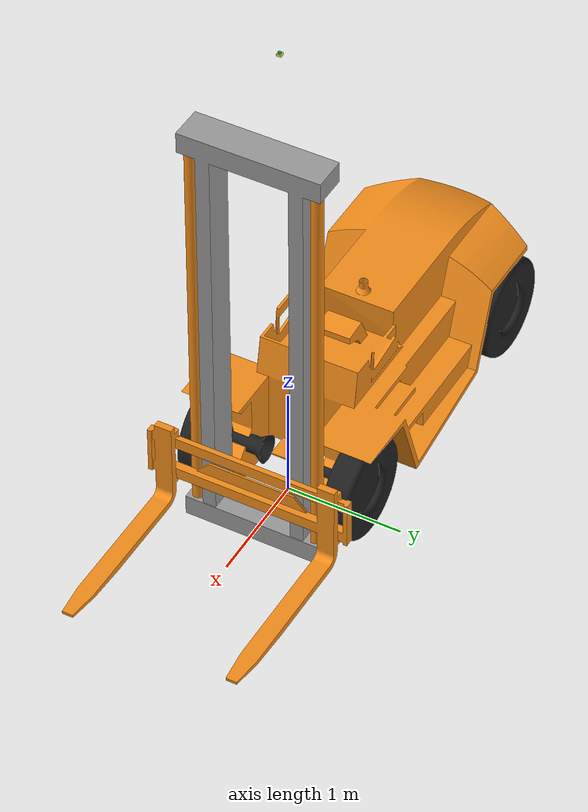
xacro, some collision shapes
<?xml version="1.0"?>

<robot name="forktruck"
       xmlns:sensor="http://playerstage.sourceforge.net/gazebo/xmlschema/#sensor"
       xmlns:controller="http://playerstage.sourceforge.net/gazebo/xmlschema/#controller"
       xmlns:interface="http://playerstage.sourceforge.net/gazebo/xmlschema/#interface"
       xmlns:xacro="http://ros.org/wiki/xacro">
  <include filename="$(find tutorial_gazebo)/urdf/forktruck_body.urdf.xacro" />
  <include filename="$(find tutorial_gazebo)/urdf/forktruck_plugin.xacro" />

  <property name="M_PI" value="3.14159"/>
  <property name="SCALE" value="0.0254"/>

  <!-- Body of qiubot -->
  <forktruck_body/>

</robot>

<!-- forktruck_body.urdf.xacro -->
<robot name="forktruck_model" xmlns:xacro="http://ros.org/wiki/xacro">
  <property name="M_PI" value="3.14159"/>
  <property name="R_wheel" value="0.3"/>
  <property name="W_wheel" value="0.08"/>
  <property name="ratio" value="0.006"/>
  <!-- Macro for forktruck body. -->
  <!-- Import Rviz colors -->
  <xacro:include filename="$(find tutorial_gazebo)/urdf/materials.xacro" />
  <property name="base_z" value="0.08" />

  <xacro:macro name="forktruck_body">

  <link name="base_footprint">
    <visual>
      <origin xyz="0 0 0" rpy="0 0 0" />
      <geometry>
        <box size="0.001 0.001 0.001" />
      </geometry>
    </visual>
    <collision>
      <origin xyz="0 0 0.1" rpy="0 0 0" />
      <geometry>
       <box size="0.001 0.001 0.001" />
      </geometry>
    </collision>
  </link>

  <link name="base_link">
    <inertial>
      <mass value="80" />
      <origin xyz="0 0 0" />
      <inertia ixx="0.01" ixy="0.0" ixz="0.0"
        iyy="0.01" iyz="0.0" izz="0.5" />
    </inertial>
    <visual>
      <origin xyz="0 0 0" rpy="${0.5*M_PI} ${0.0*M_PI} ${0.5*M_PI}" />
      <geometry>
	        <mesh filename="package://tutorial_gazebo/meshes/folktruck_base.stl" scale="${ratio} ${ratio} ${ratio}"/>
      </geometry>
    </visual>
    <collision>
      <origin xyz="0 0 0" rpy="0 0 0" />
      <geometry>
	        <box size="0.0004 0.004 0.0004" />
      </geometry>
    </collision>
  </link>

  <joint name="base_footprint_joint" type="fixed">
    <origin xyz="0 0 ${R_wheel}" rpy="0 0 0" />
    <parent link="base_footprint"/>
    <child link="base_link" />
  </joint>

 <link name="f_wheel_link">
    <inertial>
      <origin xyz="0 0 0"/>
      <mass value="10.01" />
      <inertia ixx="0.001" ixy="0.0" ixz="0.0"
        iyy="0.001" iyz="0.0" izz="0.001" />
    </inertial>
    <visual>
      <origin xyz="0 0 0" rpy="${0.5*M_PI} ${0.0*M_PI} ${0.5*M_PI}" />
      <geometry>
        <mesh filename="package://tutorial_gazebo/meshes/folktruck_wheel.stl" scale="${1.0*ratio} ${ratio} ${ratio}"/>
      </geometry>
         <material name="black" />
    </visual>
    <collision>
      <origin xyz="0 0 0" rpy="${0.5*M_PI} ${0.0*M_PI} ${0.5*M_PI}" />
      <geometry>
        <mesh filename="package://tutorial_gazebo/meshes/folktruck_wheel.stl" scale="${1.0*ratio} ${ratio} ${ratio}"/>
      </geometry>
    </collision>
  </link>

  <joint name="f_wheel_joint" type="fixed">
    <origin xyz="0.0 0.0 -0.040" rpy="0 0 0"/>
    <parent link="base_link"/>
    <child link="f_wheel_link"/>
    <axis xyz="0 1 0"/>
  </joint>

<link name="r_wheel_link">
    <inertial>
      <origin xyz="0 0 0"/>
      <mass value="20" />
      <inertia ixx="0.001" ixy="0.0" ixz="0.0"
        iyy="0.001" iyz="0.0" izz="0.001" />
    </inertial>
    <visual>
      <origin xyz="0 0 0" rpy="${0.5*M_PI} ${0.0*M_PI} ${0.5*M_PI}" />
      <geometry>
        <mesh filename="package://tutorial_gazebo/meshes/folktruck_wheel.stl" scale="${ratio} ${ratio} ${ratio}"/>
      </geometry>
         <material name="black" />
    </visual>

    <collision>
      <origin xyz="0 0 0" rpy="${0.5*M_PI} ${0.0*M_PI} ${0.5*M_PI}" />
      <geometry>
        <mesh filename="package://tutorial_gazebo/meshes/folktruck_wheel.stl" scale="${ratio} ${ratio} ${ratio}"/>
      </geometry>
    </collision>
  </link>

  <joint name="r_wheel_joint" type="fixed">
    <origin xyz="-2.4 0.0 -0.04" rpy="0 0 0"/>
    <parent link="base_link"/>
    <child link="r_wheel_link"/>
    <axis xyz="0 1 0"/>
  </joint>

<link name="vplate">
    <inertial>
      <origin xyz="0 0 0"/>
      <mass value="10" />
      <inertia ixx="0.001" ixy="0.0" ixz="0.0"
        iyy="0.001" iyz="0.0" izz="0.001" />
    </inertial>
    <visual>
      <origin xyz="0 0 0" rpy="${0.5*M_PI} ${0.0*M_PI} ${0.5*M_PI}" />
      <geometry>
        <mesh filename="package://tutorial_gazebo/meshes/folktruck_front.stl" scale="${ratio} ${1.5*ratio} ${ratio}"/>
      </geometry>
      <material name="grey" />
    </visual>

    <collision>
      <origin xyz="0 0 0.5" rpy="0 0 0" />
      <geometry>
        <sphere radius="0.035" />
      </geometry>
    </collision>
  </link>

  <joint name="vplate_joint" type="fixed">
    <origin xyz=".10 -0.0 0.04" rpy="0 0 0"/>
    <parent link="base_link"/>
    <child link="vplate"/>
  </joint>

<link name="lcynldr">
    <inertial>
      <origin xyz="0 0 0"/>
      <mass value="0.1" />
      <inertia ixx="0.001" ixy="0.0" ixz="0.0"
        iyy="0.001" iyz="0.0" izz="0.001" />
    </inertial>
    <visual>
      <origin xyz="0 0 0.0" rpy="0 0 0"/>
      <geometry>
        <cylinder  radius="0.05" length = "3.75"/>
      </geometry>
      <material name="orange" />
    </visual>

    <collision>
      <origin xyz="0 0 0.5" rpy="0 0 0" />
      <geometry>
        <cylinder  radius="0.0035" length = "0.2"/>
      </geometry>
    </collision>
  </link>

  <joint name="lcynldr_joint" type="fixed">
    <origin xyz="0.4 0.53 1.55" rpy="0 0 0"/>
    <parent link="vplate"/>
    <child link="lcynldr"/>
  </joint>

<link name="rcynldr">
    <inertial>
      <origin xyz="0 0 0"/>
      <mass value="0.1" />
      <inertia ixx="0.001" ixy="0.0" ixz="0.0"
        iyy="0.001" iyz="0.0" izz="0.001" />
    </inertial>
    <visual>
      <origin xyz="0 0 0.0" rpy="0 0 0"/>
      <geometry>
        <cylinder  radius="0.05" length = "3.75"/>
      </geometry>
      <material name="orange" />
    </visual>

    <collision>
      <origin xyz="0 0 0.5" rpy="0 0 0" />
      <geometry>
        <cylinder  radius="0.0035" length = "0.2"/>
      </geometry>
    </collision>
  </link>

  <joint name="rcynldr_joint" type="fixed">
        <origin xyz="0.4 -0.53 1.55" rpy="0 0 0"/>
    <parent link="vplate"/>
    <child link="rcynldr"/>
  </joint>

<link name="fork">
    <inertial>
      <origin xyz="0 0 0"/>
      <mass value="18" />
      <inertia ixx="0.021" ixy="0.0" ixz="0.0"
        iyy="0.021" iyz="0.0" izz="0.021" />
    </inertial>
    <visual>
      <origin xyz="0 0 0.0"  rpy="${0.5*M_PI} ${0.0*M_PI} ${0.5*M_PI}" />
      <geometry>
        <mesh filename="package://tutorial_gazebo/meshes/folktruck_fork.stl" scale="${ratio} ${ratio} ${ratio}"/>
      </geometry>
      <material name="orange" />
    </visual>

    <collision>
      <origin xyz="0 0 0.0"  rpy="${0.5*M_PI} ${0.0*M_PI} ${0.5*M_PI}" />
      <geometry>
        <mesh filename="package://tutorial_gazebo/meshes/folktruck_fork.stl" scale="${ratio} ${ratio} ${ratio}"/>
      </geometry>
    </collision>
  </link>

  <joint name="fork_joint" type="fixed">
    <origin xyz="0.0 0.0 -0.35" rpy="0 0 0"/>
    <axis xyz="0 0 1" />
    <limit effort="10.0" lower="-0.35" upper="3.5" velocity="0.2"/>
    <dynamics damping="1000.0"/>
    <parent link="vplate"/>
    <child link="fork"/>
  </joint>

<link name="plate">
    <inertial>
      <origin xyz="0 0 0"/>
      <mass value="0.1" />
      <inertia ixx="0.001" ixy="0.0" ixz="0.0"
        iyy="0.001" iyz="0.0" izz="0.001" />
    </inertial>
    <visual>
      <origin xyz="0 0 0.0" rpy="0 0 0"/>
      <geometry>
        <box size="0.2 0.2 0.012" />
      </geometry>
      <material name="orange" />
    </visual>

    <collision>
      <origin xyz="0 0 0.5" rpy="0 0 0" />
      <geometry>
        <sphere radius="0.035" />
      </geometry>
    </collision>
  </link>

  <joint name="plate_joint" type="fixed">
    <origin xyz="0.0 0 0.12" rpy="0 0 0"/>
    <parent link="base_link"/>
    <child link="plate"/>
  </joint>

  <link name="camera_pod_link">
    <inertial>
      <origin xyz="0 0 0"/>
      <mass value="0.1" />
      <inertia ixx="0.001" ixy="0.0" ixz="0.0"
        iyy="0.001" iyz="0.0" izz="0.001" />
    </inertial>
     <visual>
      <origin xyz="0 0 0.0" rpy="0 0 0"/>
      <geometry>
        <sphere radius="0.00028" />
      </geometry>
    </visual>

    <collision>
      <origin xyz="0 0 0.5" rpy="0 0 0" />
      <geometry>
        <sphere radius="0.035" />
      </geometry>
    </collision>

  </link>

  <joint name="camera_pod_joint" type="fixed">
    <origin xyz="0.095 0.065 0.075" rpy="0 0 0"/>
    <parent link="plate"/>
    <child link="camera_pod_link"/>
  </joint>

   <link name="laser_visu">
    <inertial>
      <origin xyz="0 0 0"/>
      <mass value="0.01" />
      <inertia ixx="0.001" ixy="0.0" ixz="0.0"
        iyy="0.001" iyz="0.0" izz="0.001" />
    </inertial>
    <visual>
      <origin xyz="0 0 0" rpy="0 0 0" />
      <geometry>
        <mesh filename="package://tutorial_gazebo/meshes/hokuyo_utm_30lx.dae" scale="0.757 0.757 0.757"/>
      </geometry>
    </visual>
    <collision>
      <origin xyz="0 0 0" rpy="0 0 0" />
     <geometry>
        <box size="0.024 0.024 0.024" />
      </geometry>
    </collision>
  </link>

  <joint name="laser_visu_joint" type="fixed">
    <origin xyz="0.1 0 4.035" rpy="0 0 0" />
    <parent link="plate" />
    <child link="laser_visu" />
  </joint>

   <link name="laser">
    <visual>
      <geometry>
        <box size="0.04 0.04 0.02" />
      </geometry>
    </visual>
    <inertial>
      <mass value="0.001" />
      <origin xyz="0 0 0" />
      <inertia ixx="0.0001" ixy="0.0" ixz="0.0"
        iyy="0.0001" iyz="0.0"
        izz="0.0001" />
    </inertial>
  </link>

  <joint name="laser_joint" type="fixed">
    <origin xyz="0.1 0 4.03" rpy="0 0 0" />
    <parent link="plate" />
    <child link="laser" />
  </joint>

<!--Painting color for all the joints-->
  <gazebo reference="f_wheel_link">
   <material>Gazebo/Black</material>
  </gazebo>
  <gazebo reference="r_wheel_link">
   <material>Gazebo/Black</material>
  </gazebo>
  <gazebo reference="base_footprint">
   <material>Gazebo/Black</material>
  </gazebo>
  <gazebo reference="base_link">
   <material>Gazebo/Orange</material>
  </gazebo>
  <gazebo reference="center_box">
   <material>Gazebo/Orange</material>
  </gazebo>
  <gazebo reference="plate">
   <material>Gazebo/Gold</material>
  </gazebo>
  <gazebo reference="vplate">
   <material>Gazebo/Grey</material>
  </gazebo>
  <gazebo reference="lcynldr">
   <material>Gazebo/Black</material>
  </gazebo>
  <gazebo reference="rcynldr">
   <material>Gazebo/Black</material>
  </gazebo>
  <gazebo reference="fork">
   <material>Gazebo/FlatBlack</material>
  </gazebo>
  </xacro:macro>
</robot>
